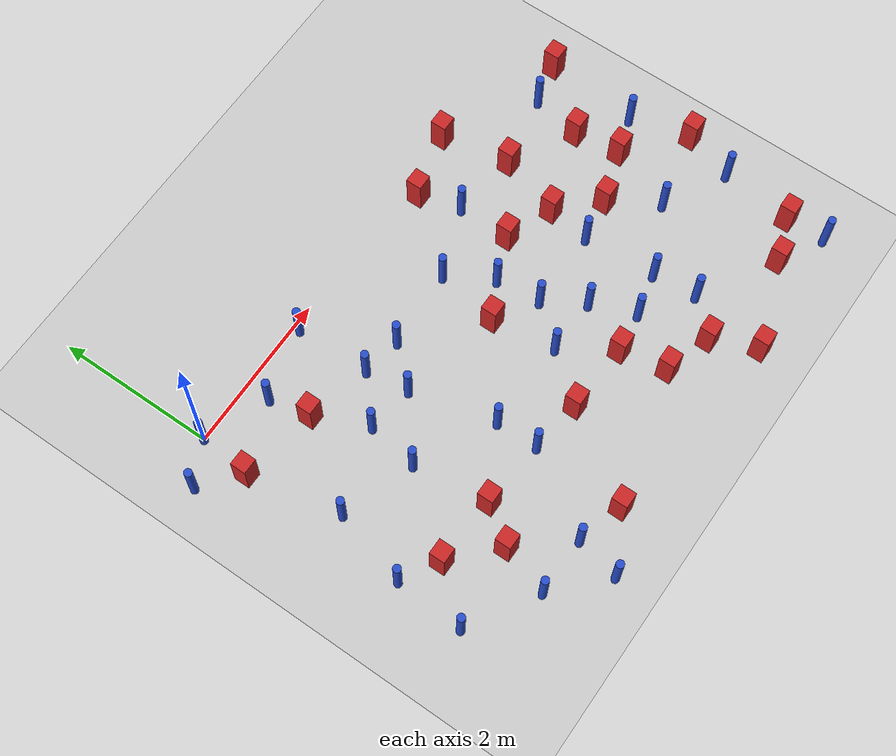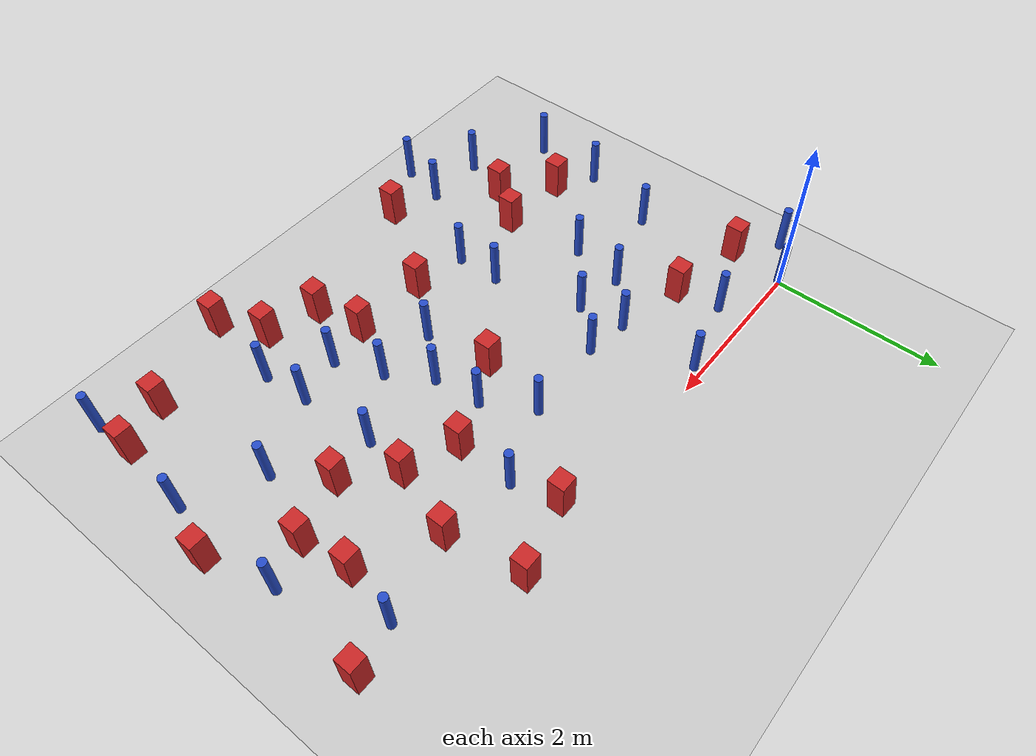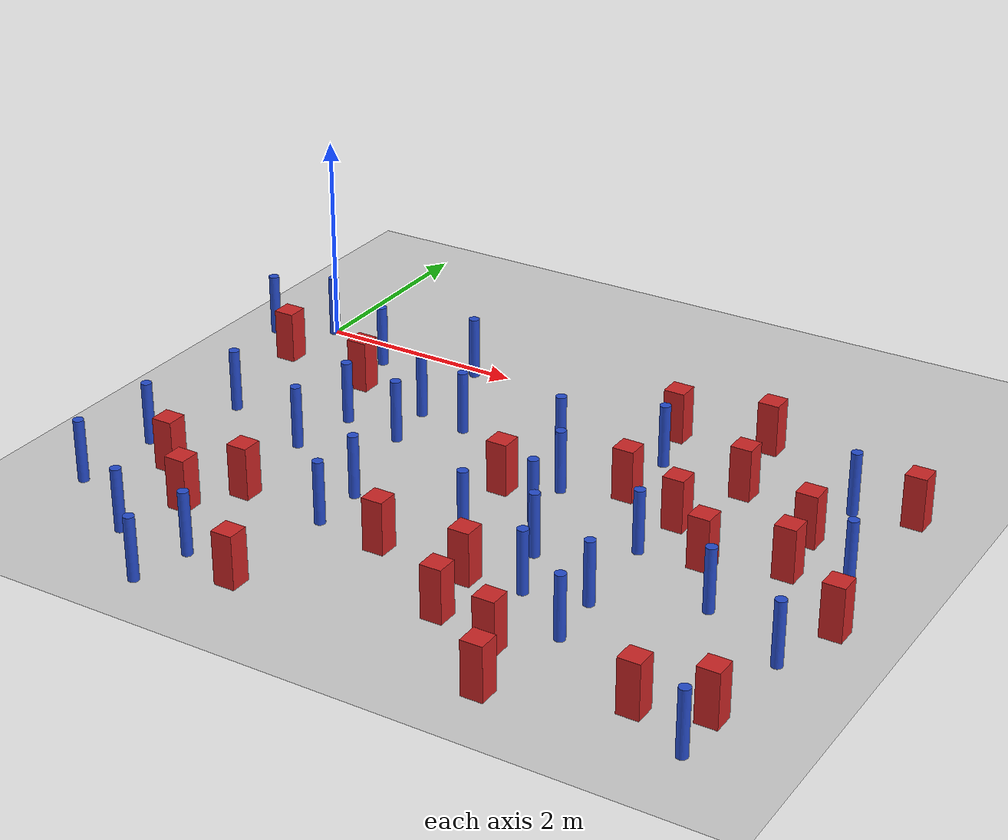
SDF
<sdf version="1.6">
 <world name="default">
  <model name="ground_plane">
   <static>1</static>
   <link name="link">
    <collision name="collision">
     <geometry><plane><normal>0 0 1</normal><size>100 100</size></plane></geometry>
     <surface><friction><ode><mu>100</mu><mu2>50</mu2></ode></friction></surface>
    </collision>
    <visual name="visual">
     <cast_shadows>0</cast_shadows>
     <geometry><plane><normal>0 0 1</normal><size>100 100</size></plane></geometry>
     <material>
      <ambient>1.0 1.0 1.0 1.0</ambient>
      <diffuse>0.8 0.8 0.8 1.0</diffuse>
      <specular>0.01 0.01 0.01 1.000000</specular>
     </material>
    </visual>
   </link>
  </model>
  <model name="NamedLocations">
   <static>true</static>
   <link name="DefaultStart"><pose>8.5 0 0 0 0 3.14</pose></link>
  </model>
  <model name="pole_obstacle3">
   <static>true</static>
   <pose>3.58272405609 -2.19162228922 -9.47619616065e-06 5.49618799737e-07 2.36310414051e-07 -1.55090534807e-07</pose>
   <link name="link">
    <pose>0 0 0.3 0 -0 0</pose>
    <inertial>
     <mass>1</mass>
     <inertia><ixx>0.145833</ixx><ixy>0</ixy><ixz>0</ixz><iyy>0.145833</iyy><iyz>0</iyz><izz>0.125</izz></inertia>
    </inertial>
    <collision name="collision">
     <geometry><cylinder><radius>0.05</radius><length>.6</length></cylinder></geometry>
    </collision>
    <visual name="visual">
     <geometry><cylinder><radius>0.05</radius><length>.6</length></cylinder></geometry>
     <material>
      <script><name>Gazebo/Blue</name><uri>file://media/materials/scripts/gazebo.material</uri></script>
     </material>
    </visual>
   </link>
  </model>
  <model name="pole_obstacle6">
   <static>true</static>
   <pose>4.59149566089 -2.1830002318 -9.47619616065e-06 5.49618799738e-07 2.36310414051e-07 -1.55090534805e-07</pose>
   <link name="link">
    <pose>0 0 0.3 0 -0 0</pose>
    <inertial>
     <mass>1</mass>
     <inertia><ixx>0.145833</ixx><ixy>0</ixy><ixz>0</ixz><iyy>0.145833</iyy><iyz>0</iyz><izz>0.125</izz></inertia>
    </inertial>
    <collision name="collision">
     <geometry><cylinder><radius>0.05</radius><length>.6</length></cylinder></geometry>
    </collision>
    <visual name="visual">
     <geometry><cylinder><radius>0.05</radius><length>.6</length></cylinder></geometry>
     <material>
      <script><name>Gazebo/Blue</name><uri>file://media/materials/scripts/gazebo.material</uri></script>
     </material>
    </visual>
   </link>
  </model>
  <model name="square_post_obstacle14">
   <static>true</static>
   <pose>6.18782036938 -4.00822140746 -6.11067671241e-07 -5.50515727128e-06 -8.79689657224e-07 2.37013304536e-05</pose>
   <link name="link">
    <pose>0 0 0.25 0 -0 0</pose>
    <inertial>
     <mass>100</mass>
     <inertia>
      <ixx>0.166667</ixx>
      <ixy>0</ixy>
      <ixz>0</ixz>
      <iyy>0.166667</iyy>
      <iyz>0</iyz>
      <izz>0.166667</izz>
     </inertia>
    </inertial>
    <collision name="collision"><geometry><box><size>.2 .2 .5</size></box></geometry></collision>
    <visual name="visual">
     <geometry><box><size>.2 .2 .5</size></box></geometry>
     <material>
      <script><name>Gazebo/Red</name><uri>file://media/materials/scripts/gazebo.material</uri></script>
     </material>
    </visual>
   </link>
  </model>
  <model name="pole_obstacle9">
   <static>true</static>
   <pose>4.07267543703 -0.739096492723 -9.47619616065e-06 5.49618799737e-07 2.36310414061e-07 -1.550905348e-07</pose>
   <link name="link">
    <pose>0 0 0.3 0 -0 0</pose>
    <inertial>
     <mass>1</mass>
     <inertia><ixx>0.145833</ixx><ixy>0</ixy><ixz>0</ixz><iyy>0.145833</iyy><iyz>0</iyz><izz>0.125</izz></inertia>
    </inertial>
    <collision name="collision">
     <geometry><cylinder><radius>0.05</radius><length>.6</length></cylinder></geometry>
    </collision>
    <visual name="visual">
     <geometry><cylinder><radius>0.05</radius><length>.6</length></cylinder></geometry>
     <material>
      <script><name>Gazebo/Blue</name><uri>file://media/materials/scripts/gazebo.material</uri></script>
     </material>
    </visual>
   </link>
  </model>
  <model name="square_post_obstacle27">
   <static>true</static>
   <pose>2.72194916645 -3.24957769912 -6.11067671241e-07 -5.50515727128e-06 -8.79689657224e-07 2.37013304536e-05</pose>
   <link name="link">
    <pose>0 0 0.25 0 -0 0</pose>
    <inertial>
     <mass>100</mass>
     <inertia>
      <ixx>0.166667</ixx>
      <ixy>0</ixy>
      <ixz>0</ixz>
      <iyy>0.166667</iyy>
      <iyz>0</iyz>
      <izz>0.166667</izz>
     </inertia>
    </inertial>
    <collision name="collision"><geometry><box><size>.2 .2 .5</size></box></geometry></collision>
    <visual name="visual">
     <geometry><box><size>.2 .2 .5</size></box></geometry>
     <material>
      <script><name>Gazebo/Red</name><uri>file://media/materials/scripts/gazebo.material</uri></script>
     </material>
    </visual>
   </link>
  </model>
  <model name="pole_obstacle21">
   <static>true</static>
   <pose>0.158909097196 -1.84218891744 -9.47619616065e-06 5.49618799738e-07 2.36310414068e-07 -1.55090534796e-07</pose>
   <link name="link">
    <pose>0 0 0.3 0 -0 0</pose>
    <inertial>
     <mass>1</mass>
     <inertia><ixx>0.145833</ixx><ixy>0</ixy><ixz>0</ixz><iyy>0.145833</iyy><iyz>0</iyz><izz>0.125</izz></inertia>
    </inertial>
    <collision name="collision">
     <geometry><cylinder><radius>0.05</radius><length>.6</length></cylinder></geometry>
    </collision>
    <visual name="visual">
     <geometry><cylinder><radius>0.05</radius><length>.6</length></cylinder></geometry>
     <material>
      <script><name>Gazebo/Blue</name><uri>file://media/materials/scripts/gazebo.material</uri></script>
     </material>
    </visual>
   </link>
  </model>
  <model name="pole_obstacle24">
   <static>true</static>
   <pose>-0.149185523467 -3.64805236145 -9.4761961606e-06 5.49618799729e-07 2.36310413997e-07 -1.55090534825e-07</pose>
   <link name="link">
    <pose>0 0 0.3 0 -0 0</pose>
    <inertial>
     <mass>1</mass>
     <inertia><ixx>0.145833</ixx><ixy>0</ixy><ixz>0</ixz><iyy>0.145833</iyy><iyz>0</iyz><izz>0.125</izz></inertia>
    </inertial>
    <collision name="collision">
     <geometry><cylinder><radius>0.05</radius><length>.6</length></cylinder></geometry>
    </collision>
    <visual name="visual">
     <geometry><cylinder><radius>0.05</radius><length>.6</length></cylinder></geometry>
     <material>
      <script><name>Gazebo/Blue</name><uri>file://media/materials/scripts/gazebo.material</uri></script>
     </material>
    </visual>
   </link>
  </model>
  <model name="square_post_obstacle34">
   <static>true</static>
   <pose>6.38540741002 -0.544285555662 -6.11067671241e-07 -5.50515727128e-06 -8.79689657224e-07 2.37013304536e-05</pose>
   <link name="link">
    <pose>0 0 0.25 0 -0 0</pose>
    <inertial>
     <mass>100</mass>
     <inertia>
      <ixx>0.166667</ixx>
      <ixy>0</ixy>
      <ixz>0</ixz>
      <iyy>0.166667</iyy>
      <iyz>0</iyz>
      <izz>0.166667</izz>
     </inertia>
    </inertial>
    <collision name="collision"><geometry><box><size>.2 .2 .5</size></box></geometry></collision>
    <visual name="visual">
     <geometry><box><size>.2 .2 .5</size></box></geometry>
     <material>
      <script><name>Gazebo/Red</name><uri>file://media/materials/scripts/gazebo.material</uri></script>
     </material>
    </visual>
   </link>
  </model>
  <model name="pole_obstacle31">
   <static>true</static>
   <pose>5.85446970726 -0.662870384667 -9.47619616065e-06 5.49618799737e-07 2.36310414061e-07 -1.550905348e-07</pose>
   <link name="link">
    <pose>0 0 0.3 0 -0 0</pose>
    <inertial>
     <mass>1</mass>
     <inertia><ixx>0.145833</ixx><ixy>0</ixy><ixz>0</ixz><iyy>0.145833</iyy><iyz>0</iyz><izz>0.125</izz></inertia>
    </inertial>
    <collision name="collision">
     <geometry><cylinder><radius>0.05</radius><length>.6</length></cylinder></geometry>
    </collision>
    <visual name="visual">
     <geometry><cylinder><radius>0.05</radius><length>.6</length></cylinder></geometry>
     <material>
      <script><name>Gazebo/Blue</name><uri>file://media/materials/scripts/gazebo.material</uri></script>
     </material>
    </visual>
   </link>
  </model>
  <model name="pole_obstacle51">
   <static>true</static>
   <pose>3.52470503607 -1.62711862913 -9.47619616065e-06 5.49618799737e-07 2.36310414072e-07 -1.55090534793e-07</pose>
   <link name="link">
    <pose>0 0 0.3 0 -0 0</pose>
    <inertial>
     <mass>1</mass>
     <inertia><ixx>0.145833</ixx><ixy>0</ixy><ixz>0</ixz><iyy>0.145833</iyy><iyz>0</iyz><izz>0.125</izz></inertia>
    </inertial>
    <collision name="collision">
     <geometry><cylinder><radius>0.05</radius><length>.6</length></cylinder></geometry>
    </collision>
    <visual name="visual">
     <geometry><cylinder><radius>0.05</radius><length>.6</length></cylinder></geometry>
     <material>
      <script><name>Gazebo/Blue</name><uri>file://media/materials/scripts/gazebo.material</uri></script>
     </material>
    </visual>
   </link>
  </model>
  <model name="square_post_obstacle57">
   <static>true</static>
   <pose>4.29934406649 -4.05373494595 -6.11067671241e-07 -5.50515727128e-06 -8.79689657224e-07 2.37013304536e-05</pose>
   <link name="link">
    <pose>0 0 0.25 0 -0 0</pose>
    <inertial>
     <mass>100</mass>
     <inertia>
      <ixx>0.166667</ixx>
      <ixy>0</ixy>
      <ixz>0</ixz>
      <iyy>0.166667</iyy>
      <iyz>0</iyz>
      <izz>0.166667</izz>
     </inertia>
    </inertial>
    <collision name="collision"><geometry><box><size>.2 .2 .5</size></box></geometry></collision>
    <visual name="visual">
     <geometry><box><size>.2 .2 .5</size></box></geometry>
     <material>
      <script><name>Gazebo/Red</name><uri>file://media/materials/scripts/gazebo.material</uri></script>
     </material>
    </visual>
   </link>
  </model>
  <model name="pole_obstacle58">
   <static>true</static>
   <pose>2.05718529817 -3.16750186175 -9.47619616065e-06 5.49618799737e-07 2.36310414051e-07 -1.55090534807e-07</pose>
   <link name="link">
    <pose>0 0 0.3 0 -0 0</pose>
    <inertial>
     <mass>1</mass>
     <inertia><ixx>0.145833</ixx><ixy>0</ixy><ixz>0</ixz><iyy>0.145833</iyy><iyz>0</iyz><izz>0.125</izz></inertia>
    </inertial>
    <collision name="collision">
     <geometry><cylinder><radius>0.05</radius><length>.6</length></cylinder></geometry>
    </collision>
    <visual name="visual">
     <geometry><cylinder><radius>0.05</radius><length>.6</length></cylinder></geometry>
     <material>
      <script><name>Gazebo/Blue</name><uri>file://media/materials/scripts/gazebo.material</uri></script>
     </material>
    </visual>
   </link>
  </model>
  <model name="square_post_obstacle63">
   <static>true</static>
   <pose>3.07526699242 -1.86525213293 -6.11067671241e-07 -5.50515727128e-06 -8.79689657224e-07 2.37013304536e-05</pose>
   <link name="link">
    <pose>0 0 0.25 0 -0 0</pose>
    <inertial>
     <mass>100</mass>
     <inertia>
      <ixx>0.166667</ixx>
      <ixy>0</ixy>
      <ixz>0</ixz>
      <iyy>0.166667</iyy>
      <iyz>0</iyz>
      <izz>0.166667</izz>
     </inertia>
    </inertial>
    <collision name="collision"><geometry><box><size>.2 .2 .5</size></box></geometry></collision>
    <visual name="visual">
     <geometry><box><size>.2 .2 .5</size></box></geometry>
     <material>
      <script><name>Gazebo/Red</name><uri>file://media/materials/scripts/gazebo.material</uri></script>
     </material>
    </visual>
   </link>
  </model>
  <model name="square_post_obstacle65">
   <static>true</static>
   <pose>4.9167820898 -0.854836416078 -6.11067671241e-07 -5.50515727128e-06 -8.79689657224e-07 2.37013304536e-05</pose>
   <link name="link">
    <pose>0 0 0.25 0 -0 0</pose>
    <inertial>
     <mass>100</mass>
     <inertia>
      <ixx>0.166667</ixx>
      <ixy>0</ixy>
      <ixz>0</ixz>
      <iyy>0.166667</iyy>
      <iyz>0</iyz>
      <izz>0.166667</izz>
     </inertia>
    </inertial>
    <collision name="collision"><geometry><box><size>.2 .2 .5</size></box></geometry></collision>
    <visual name="visual">
     <geometry><box><size>.2 .2 .5</size></box></geometry>
     <material>
      <script><name>Gazebo/Red</name><uri>file://media/materials/scripts/gazebo.material</uri></script>
     </material>
    </visual>
   </link>
  </model>
  <model name="pole_obstacle64">
   <static>true</static>
   <pose>1.41750151176 -4.16136243071 -9.47619616065e-06 5.49618799737e-07 2.36310414061e-07 -1.550905348e-07</pose>
   <link name="link">
    <pose>0 0 0.3 0 -0 0</pose>
    <inertial>
     <mass>1</mass>
     <inertia><ixx>0.145833</ixx><ixy>0</ixy><ixz>0</ixz><iyy>0.145833</iyy><iyz>0</iyz><izz>0.125</izz></inertia>
    </inertial>
    <collision name="collision">
     <geometry><cylinder><radius>0.05</radius><length>.6</length></cylinder></geometry>
    </collision>
    <visual name="visual">
     <geometry><cylinder><radius>0.05</radius><length>.6</length></cylinder></geometry>
     <material>
      <script><name>Gazebo/Blue</name><uri>file://media/materials/scripts/gazebo.material</uri></script>
     </material>
    </visual>
   </link>
  </model>
  <model name="pole_obstacle73">
   <static>true</static>
   <pose>0.693529149861 -4.15136273481 -9.47619616065e-06 5.49618799737e-07 2.36310414065e-07 -1.55090534796e-07</pose>
   <link name="link">
    <pose>0 0 0.3 0 -0 0</pose>
    <inertial>
     <mass>1</mass>
     <inertia><ixx>0.145833</ixx><ixy>0</ixy><ixz>0</ixz><iyy>0.145833</iyy><iyz>0</iyz><izz>0.125</izz></inertia>
    </inertial>
    <collision name="collision">
     <geometry><cylinder><radius>0.05</radius><length>.6</length></cylinder></geometry>
    </collision>
    <visual name="visual">
     <geometry><cylinder><radius>0.05</radius><length>.6</length></cylinder></geometry>
     <material>
      <script><name>Gazebo/Blue</name><uri>file://media/materials/scripts/gazebo.material</uri></script>
     </material>
    </visual>
   </link>
  </model>
  <model name="pole_obstacle75">
   <static>true</static>
   <pose>1.68649189521 -0.0990275698938 -9.47619616065e-06 5.49618799737e-07 2.36310414064e-07 -1.55090534798e-07</pose>
   <link name="link">
    <pose>0 0 0.3 0 -0 0</pose>
    <inertial>
     <mass>1</mass>
     <inertia><ixx>0.145833</ixx><ixy>0</ixy><ixz>0</ixz><iyy>0.145833</iyy><iyz>0</iyz><izz>0.125</izz></inertia>
    </inertial>
    <collision name="collision">
     <geometry><cylinder><radius>0.05</radius><length>.6</length></cylinder></geometry>
    </collision>
    <visual name="visual">
     <geometry><cylinder><radius>0.05</radius><length>.6</length></cylinder></geometry>
     <material>
      <script><name>Gazebo/Blue</name><uri>file://media/materials/scripts/gazebo.material</uri></script>
     </material>
    </visual>
   </link>
  </model>
  <model name="pole_obstacle85">
   <static>true</static>
   <pose>2.20527275366 -1.12541294421 -9.47619616065e-06 5.49618799737e-07 2.36310414072e-07 -1.55090534793e-07</pose>
   <link name="link">
    <pose>0 0 0.3 0 -0 0</pose>
    <inertial>
     <mass>1</mass>
     <inertia><ixx>0.145833</ixx><ixy>0</ixy><ixz>0</ixz><iyy>0.145833</iyy><iyz>0</iyz><izz>0.125</izz></inertia>
    </inertial>
    <collision name="collision">
     <geometry><cylinder><radius>0.05</radius><length>.6</length></cylinder></geometry>
    </collision>
    <visual name="visual">
     <geometry><cylinder><radius>0.05</radius><length>.6</length></cylinder></geometry>
     <material>
      <script><name>Gazebo/Blue</name><uri>file://media/materials/scripts/gazebo.material</uri></script>
     </material>
    </visual>
   </link>
  </model>
  <model name="pole_obstacle88">
   <static>true</static>
   <pose>3.20381782987 -1.06922926228 -9.47619616065e-06 5.49618799737e-07 2.36310414072e-07 -1.55090534793e-07</pose>
   <link name="link">
    <pose>0 0 0.3 0 -0 0</pose>
    <inertial>
     <mass>1</mass>
     <inertia><ixx>0.145833</ixx><ixy>0</ixy><ixz>0</ixz><iyy>0.145833</iyy><iyz>0</iyz><izz>0.125</izz></inertia>
    </inertial>
    <collision name="collision">
     <geometry><cylinder><radius>0.05</radius><length>.6</length></cylinder></geometry>
    </collision>
    <visual name="visual">
     <geometry><cylinder><radius>0.05</radius><length>.6</length></cylinder></geometry>
     <material>
      <script><name>Gazebo/Blue</name><uri>file://media/materials/scripts/gazebo.material</uri></script>
     </material>
    </visual>
   </link>
  </model>
  <model name="pole_obstacle98">
   <static>true</static>
   <pose>2.04653486869 -2.63713153117 -9.47619616065e-06 5.49618799738e-07 2.36310414047e-07 -1.55090534808e-07</pose>
   <link name="link">
    <pose>0 0 0.3 0 -0 0</pose>
    <inertial>
     <mass>1</mass>
     <inertia><ixx>0.145833</ixx><ixy>0</ixy><ixz>0</ixz><iyy>0.145833</iyy><iyz>0</iyz><izz>0.125</izz></inertia>
    </inertial>
    <collision name="collision">
     <geometry><cylinder><radius>0.05</radius><length>.6</length></cylinder></geometry>
    </collision>
    <visual name="visual">
     <geometry><cylinder><radius>0.05</radius><length>.6</length></cylinder></geometry>
     <material>
      <script><name>Gazebo/Blue</name><uri>file://media/materials/scripts/gazebo.material</uri></script>
     </material>
    </visual>
   </link>
  </model>
  <model name="pole_obstacle101">
   <static>true</static>
   <pose>5.50163234213 -2.69299753524 -9.47619616065e-06 5.49618799738e-07 2.36310414051e-07 -1.55090534805e-07</pose>
   <link name="link">
    <pose>0 0 0.3 0 -0 0</pose>
    <inertial>
     <mass>1</mass>
     <inertia><ixx>0.145833</ixx><ixy>0</ixy><ixz>0</ixz><iyy>0.145833</iyy><iyz>0</iyz><izz>0.125</izz></inertia>
    </inertial>
    <collision name="collision">
     <geometry><cylinder><radius>0.05</radius><length>.6</length></cylinder></geometry>
    </collision>
    <visual name="visual">
     <geometry><cylinder><radius>0.05</radius><length>.6</length></cylinder></geometry>
     <material>
      <script><name>Gazebo/Blue</name><uri>file://media/materials/scripts/gazebo.material</uri></script>
     </material>
    </visual>
   </link>
  </model>
  <model name="pole_obstacle106">
   <static>true</static>
   <pose>-0.534209004417 -0.292026559808 -9.47619616065e-06 5.49618799737e-07 2.36310414063e-07 -1.55090534797e-07</pose>
   <link name="link">
    <pose>0 0 0.3 0 -0 0</pose>
    <inertial>
     <mass>1</mass>
     <inertia><ixx>0.145833</ixx><ixy>0</ixy><ixz>0</ixz><iyy>0.145833</iyy><iyz>0</iyz><izz>0.125</izz></inertia>
    </inertial>
    <collision name="collision">
     <geometry><cylinder><radius>0.05</radius><length>.6</length></cylinder></geometry>
    </collision>
    <visual name="visual">
     <geometry><cylinder><radius>0.05</radius><length>.6</length></cylinder></geometry>
     <material>
      <script><name>Gazebo/Blue</name><uri>file://media/materials/scripts/gazebo.material</uri></script>
     </material>
    </visual>
   </link>
  </model>
  <model name="square_post_obstacle99">
   <static>true</static>
   <pose>-0.0680560673629 -0.675656505767 -6.11067671241e-07 -5.50515727128e-06 -8.79689657224e-07 2.37013304536e-05</pose>
   <link name="link">
    <pose>0 0 0.25 0 -0 0</pose>
    <inertial>
     <mass>100</mass>
     <inertia>
      <ixx>0.166667</ixx>
      <ixy>0</ixy>
      <ixz>0</ixz>
      <iyy>0.166667</iyy>
      <iyz>0</iyz>
      <izz>0.166667</izz>
     </inertia>
    </inertial>
    <collision name="collision"><geometry><box><size>.2 .2 .5</size></box></geometry></collision>
    <visual name="visual">
     <geometry><box><size>.2 .2 .5</size></box></geometry>
     <material>
      <script><name>Gazebo/Red</name><uri>file://media/materials/scripts/gazebo.material</uri></script>
     </material>
    </visual>
   </link>
  </model>
  <model name="pole_obstacle114">
   <static>true</static>
   <pose>1.08102372746 -2.14476364799 -9.47619616065e-06 5.49618799737e-07 2.36310414062e-07 -1.55090534798e-07</pose>
   <link name="link">
    <pose>0 0 0.3 0 -0 0</pose>
    <inertial>
     <mass>1</mass>
     <inertia><ixx>0.145833</ixx><ixy>0</ixy><ixz>0</ixz><iyy>0.145833</iyy><iyz>0</iyz><izz>0.125</izz></inertia>
    </inertial>
    <collision name="collision">
     <geometry><cylinder><radius>0.05</radius><length>.6</length></cylinder></geometry>
    </collision>
    <visual name="visual">
     <geometry><cylinder><radius>0.05</radius><length>.6</length></cylinder></geometry>
     <material>
      <script><name>Gazebo/Blue</name><uri>file://media/materials/scripts/gazebo.material</uri></script>
     </material>
    </visual>
   </link>
  </model>
  <model name="pole_obstacle117">
   <static>true</static>
   <pose>4.09958841676 -3.2265884422 -9.47619616065e-06 5.49618799738e-07 2.36310414051e-07 -1.55090534805e-07</pose>
   <link name="link">
    <pose>0 0 0.3 0 -0 0</pose>
    <inertial>
     <mass>1</mass>
     <inertia><ixx>0.145833</ixx><ixy>0</ixy><ixz>0</ixz><iyy>0.145833</iyy><iyz>0</iyz><izz>0.125</izz></inertia>
    </inertial>
    <collision name="collision">
     <geometry><cylinder><radius>0.05</radius><length>.6</length></cylinder></geometry>
    </collision>
    <visual name="visual">
     <geometry><cylinder><radius>0.05</radius><length>.6</length></cylinder></geometry>
     <material>
      <script><name>Gazebo/Blue</name><uri>file://media/materials/scripts/gazebo.material</uri></script>
     </material>
    </visual>
   </link>
  </model>
  <model name="square_post_obstacle104">
   <static>true</static>
   <pose>5.64328791103 -4.20735274633 -6.11067671241e-07 -5.50515727128e-06 -8.79689657224e-07 2.37013304536e-05</pose>
   <link name="link">
    <pose>0 0 0.25 0 -0 0</pose>
    <inertial>
     <mass>100</mass>
     <inertia>
      <ixx>0.166667</ixx>
      <ixy>0</ixy>
      <ixz>0</ixz>
      <iyy>0.166667</iyy>
      <iyz>0</iyz>
      <izz>0.166667</izz>
     </inertia>
    </inertial>
    <collision name="collision"><geometry><box><size>.2 .2 .5</size></box></geometry></collision>
    <visual name="visual">
     <geometry><box><size>.2 .2 .5</size></box></geometry>
     <material>
      <script><name>Gazebo/Red</name><uri>file://media/materials/scripts/gazebo.material</uri></script>
     </material>
    </visual>
   </link>
  </model>
  <model name="pole_obstacle120">
   <static>true</static>
   <pose>6.28288578558 -1.72526329659 -9.47619616065e-06 5.49618799738e-07 2.36310414071e-07 -1.55090534796e-07</pose>
   <link name="link">
    <pose>0 0 0.3 0 -0 0</pose>
    <inertial>
     <mass>1</mass>
     <inertia><ixx>0.145833</ixx><ixy>0</ixy><ixz>0</ixz><iyy>0.145833</iyy><iyz>0</iyz><izz>0.125</izz></inertia>
    </inertial>
    <collision name="collision">
     <geometry><cylinder><radius>0.05</radius><length>.6</length></cylinder></geometry>
    </collision>
    <visual name="visual">
     <geometry><cylinder><radius>0.05</radius><length>.6</length></cylinder></geometry>
     <material>
      <script><name>Gazebo/Blue</name><uri>file://media/materials/scripts/gazebo.material</uri></script>
     </material>
    </visual>
   </link>
  </model>
  <model name="pole_obstacle124">
   <static>true</static>
   <pose>1.78167763211 -1.58451871084 -9.47619616065e-06 5.49618799737e-07 2.36310414065e-07 -1.55090534798e-07</pose>
   <link name="link">
    <pose>0 0 0.3 0 -0 0</pose>
    <inertial>
     <mass>1</mass>
     <inertia><ixx>0.145833</ixx><ixy>0</ixy><ixz>0</ixz><iyy>0.145833</iyy><iyz>0</iyz><izz>0.125</izz></inertia>
    </inertial>
    <collision name="collision">
     <geometry><cylinder><radius>0.05</radius><length>.6</length></cylinder></geometry>
    </collision>
    <visual name="visual">
     <geometry><cylinder><radius>0.05</radius><length>.6</length></cylinder></geometry>
     <material>
      <script><name>Gazebo/Blue</name><uri>file://media/materials/scripts/gazebo.material</uri></script>
     </material>
    </visual>
   </link>
  </model>
  <model name="square_post_obstacle114">
   <static>true</static>
   <pose>4.0657313727 -1.40791695577 -6.11067671241e-07 -5.50515727128e-06 -8.79689657224e-07 2.37013304536e-05</pose>
   <link name="link">
    <pose>0 0 0.25 0 -0 0</pose>
    <inertial>
     <mass>100</mass>
     <inertia>
      <ixx>0.166667</ixx>
      <ixy>0</ixy>
      <ixz>0</ixz>
      <iyy>0.166667</iyy>
      <iyz>0</iyz>
      <izz>0.166667</izz>
     </inertia>
    </inertial>
    <collision name="collision"><geometry><box><size>.2 .2 .5</size></box></geometry></collision>
    <visual name="visual">
     <geometry><box><size>.2 .2 .5</size></box></geometry>
     <material>
      <script><name>Gazebo/Red</name><uri>file://media/materials/scripts/gazebo.material</uri></script>
     </material>
    </visual>
   </link>
  </model>
  <model name="pole_obstacle132">
   <static>true</static>
   <pose>6.20424943716 -4.51496457561 -9.47619616065e-06 5.49618799737e-07 2.36310414037e-07 -1.55090534814e-07</pose>
   <link name="link">
    <pose>0 0 0.3 0 -0 0</pose>
    <inertial>
     <mass>1</mass>
     <inertia><ixx>0.145833</ixx><ixy>0</ixy><ixz>0</ixz><iyy>0.145833</iyy><iyz>0</iyz><izz>0.125</izz></inertia>
    </inertial>
    <collision name="collision">
     <geometry><cylinder><radius>0.05</radius><length>.6</length></cylinder></geometry>
    </collision>
    <visual name="visual">
     <geometry><cylinder><radius>0.05</radius><length>.6</length></cylinder></geometry>
     <material>
      <script><name>Gazebo/Blue</name><uri>file://media/materials/scripts/gazebo.material</uri></script>
     </material>
    </visual>
   </link>
  </model>
  <model name="square_post_obstacle116">
   <static>true</static>
   <pose>4.76154115717 0.0185535178162 -6.11067671241e-07 -5.50515727128e-06 -8.79689657224e-07 2.37013304536e-05</pose>
   <link name="link">
    <pose>0 0 0.25 0 -0 0</pose>
    <inertial>
     <mass>100</mass>
     <inertia>
      <ixx>0.166667</ixx>
      <ixy>0</ixy>
      <ixz>0</ixz>
      <iyy>0.166667</iyy>
      <iyz>0</iyz>
      <izz>0.166667</izz>
     </inertia>
    </inertial>
    <collision name="collision"><geometry><box><size>.2 .2 .5</size></box></geometry></collision>
    <visual name="visual">
     <geometry><box><size>.2 .2 .5</size></box></geometry>
     <material>
      <script><name>Gazebo/Red</name><uri>file://media/materials/scripts/gazebo.material</uri></script>
     </material>
    </visual>
   </link>
  </model>
  <model name="pole_obstacle138">
   <static>true</static>
   <pose>0.788633457509 -0.339825982032 -9.47619616065e-06 5.49618799737e-07 2.36310414068e-07 -1.55090534796e-07</pose>
   <link name="link">
    <pose>0 0 0.3 0 -0 0</pose>
    <inertial>
     <mass>1</mass>
     <inertia><ixx>0.145833</ixx><ixy>0</ixy><ixz>0</ixz><iyy>0.145833</iyy><iyz>0</iyz><izz>0.125</izz></inertia>
    </inertial>
    <collision name="collision">
     <geometry><cylinder><radius>0.05</radius><length>.6</length></cylinder></geometry>
    </collision>
    <visual name="visual">
     <geometry><cylinder><radius>0.05</radius><length>.6</length></cylinder></geometry>
     <material>
      <script><name>Gazebo/Blue</name><uri>file://media/materials/scripts/gazebo.material</uri></script>
     </material>
    </visual>
   </link>
  </model>
  <model name="pole_obstacle141">
   <static>true</static>
   <pose>1.70586682721 -1.044550323 -9.47619616065e-06 5.49618799738e-07 2.36310414064e-07 -1.55090534797e-07</pose>
   <link name="link">
    <pose>0 0 0.3 0 -0 0</pose>
    <inertial>
     <mass>1</mass>
     <inertia><ixx>0.145833</ixx><ixy>0</ixy><ixz>0</ixz><iyy>0.145833</iyy><iyz>0</iyz><izz>0.125</izz></inertia>
    </inertial>
    <collision name="collision">
     <geometry><cylinder><radius>0.05</radius><length>.6</length></cylinder></geometry>
    </collision>
    <visual name="visual">
     <geometry><cylinder><radius>0.05</radius><length>.6</length></cylinder></geometry>
     <material>
      <script><name>Gazebo/Blue</name><uri>file://media/materials/scripts/gazebo.material</uri></script>
     </material>
    </visual>
   </link>
  </model>
  <model name="square_post_obstacle130">
   <static>true</static>
   <pose>0.901561028918 -0.845094496153 -6.11067671241e-07 -5.50515727128e-06 -8.79689657224e-07 2.37013304536e-05</pose>
   <link name="link">
    <pose>0 0 0.25 0 -0 0</pose>
    <inertial>
     <mass>100</mass>
     <inertia>
      <ixx>0.166667</ixx>
      <ixy>0</ixy>
      <ixz>0</ixz>
      <iyy>0.166667</iyy>
      <iyz>0</iyz>
      <izz>0.166667</izz>
     </inertia>
    </inertial>
    <collision name="collision"><geometry><box><size>.2 .2 .5</size></box></geometry></collision>
    <visual name="visual">
     <geometry><box><size>.2 .2 .5</size></box></geometry>
     <material>
      <script><name>Gazebo/Red</name><uri>file://media/materials/scripts/gazebo.material</uri></script>
     </material>
    </visual>
   </link>
  </model>
  <model name="square_post_obstacle138">
   <static>true</static>
   <pose>5.72905600163 -1.29240824363 -6.11067671241e-07 -5.50515727128e-06 -8.79689657224e-07 2.37013304536e-05</pose>
   <link name="link">
    <pose>0 0 0.25 0 -0 0</pose>
    <inertial>
     <mass>100</mass>
     <inertia>
      <ixx>0.166667</ixx>
      <ixy>0</ixy>
      <ixz>0</ixz>
      <iyy>0.166667</iyy>
      <iyz>0</iyz>
      <izz>0.166667</izz>
     </inertia>
    </inertial>
    <collision name="collision"><geometry><box><size>.2 .2 .5</size></box></geometry></collision>
    <visual name="visual">
     <geometry><box><size>.2 .2 .5</size></box></geometry>
     <material>
      <script><name>Gazebo/Red</name><uri>file://media/materials/scripts/gazebo.material</uri></script>
     </material>
    </visual>
   </link>
  </model>
  <model name="square_post_obstacle139">
   <static>true</static>
   <pose>3.70357494387 -3.87584671003 -6.11067671241e-07 -5.50515727128e-06 -8.79689657224e-07 2.37013304536e-05</pose>
   <link name="link">
    <pose>0 0 0.25 0 -0 0</pose>
    <inertial>
     <mass>100</mass>
     <inertia>
      <ixx>0.166667</ixx>
      <ixy>0</ixy>
      <ixz>0</ixz>
      <iyy>0.166667</iyy>
      <iyz>0</iyz>
      <izz>0.166667</izz>
     </inertia>
    </inertial>
    <collision name="collision"><geometry><box><size>.2 .2 .5</size></box></geometry></collision>
    <visual name="visual">
     <geometry><box><size>.2 .2 .5</size></box></geometry>
     <material>
      <script><name>Gazebo/Red</name><uri>file://media/materials/scripts/gazebo.material</uri></script>
     </material>
    </visual>
   </link>
  </model>
  <model name="square_post_obstacle141">
   <static>true</static>
   <pose>2.00098323428 -4.3235793 -6.11067671241e-07 -5.50515727128e-06 -8.79689657224e-07 2.37013304536e-05</pose>
   <link name="link">
    <pose>0 0 0.25 0 -0 0</pose>
    <inertial>
     <mass>100</mass>
     <inertia>
      <ixx>0.166667</ixx>
      <ixy>0</ixy>
      <ixz>0</ixz>
      <iyy>0.166667</iyy>
      <iyz>0</iyz>
      <izz>0.166667</izz>
     </inertia>
    </inertial>
    <collision name="collision"><geometry><box><size>.2 .2 .5</size></box></geometry></collision>
    <visual name="visual">
     <geometry><box><size>.2 .2 .5</size></box></geometry>
     <material>
      <script><name>Gazebo/Red</name><uri>file://media/materials/scripts/gazebo.material</uri></script>
     </material>
    </visual>
   </link>
  </model>
  <model name="square_post_obstacle148">
   <static>true</static>
   <pose>0.354657966729 -3.04980292012 -6.11067671241e-07 -5.50515727128e-06 -8.79689657224e-07 2.37013304536e-05</pose>
   <link name="link">
    <pose>0 0 0.25 0 -0 0</pose>
    <inertial>
     <mass>100</mass>
     <inertia>
      <ixx>0.166667</ixx>
      <ixy>0</ixy>
      <ixz>0</ixz>
      <iyy>0.166667</iyy>
      <iyz>0</iyz>
      <izz>0.166667</izz>
     </inertia>
    </inertial>
    <collision name="collision"><geometry><box><size>.2 .2 .5</size></box></geometry></collision>
    <visual name="visual">
     <geometry><box><size>.2 .2 .5</size></box></geometry>
     <material>
      <script><name>Gazebo/Red</name><uri>file://media/materials/scripts/gazebo.material</uri></script>
     </material>
    </visual>
   </link>
  </model>
  <model name="square_post_obstacle153">
   <static>true</static>
   <pose>1.20882534248 -3.09249684506 -6.11067671241e-07 -5.50515727128e-06 -8.79689657224e-07 2.37013304536e-05</pose>
   <link name="link">
    <pose>0 0 0.25 0 -0 0</pose>
    <inertial>
     <mass>100</mass>
     <inertia>
      <ixx>0.166667</ixx>
      <ixy>0</ixy>
      <ixz>0</ixz>
      <iyy>0.166667</iyy>
      <iyz>0</iyz>
      <izz>0.166667</izz>
     </inertia>
    </inertial>
    <collision name="collision"><geometry><box><size>.2 .2 .5</size></box></geometry></collision>
    <visual name="visual">
     <geometry><box><size>.2 .2 .5</size></box></geometry>
     <material>
      <script><name>Gazebo/Red</name><uri>file://media/materials/scripts/gazebo.material</uri></script>
     </material>
    </visual>
   </link>
  </model>
  <model name="pole_obstacle161">
   <static>true</static>
   <pose>-0.0113385901616 -0.014522897388 -9.47619616065e-06 5.49618799737e-07 2.36310414053e-07 -1.55090534803e-07</pose>
   <link name="link">
    <pose>0 0 0.3 0 -0 0</pose>
    <inertial>
     <mass>1</mass>
     <inertia><ixx>0.145833</ixx><ixy>0</ixy><ixz>0</ixz><iyy>0.145833</iyy><iyz>0</iyz><izz>0.125</izz></inertia>
    </inertial>
    <collision name="collision">
     <geometry><cylinder><radius>0.05</radius><length>.6</length></cylinder></geometry>
    </collision>
    <visual name="visual">
     <geometry><cylinder><radius>0.05</radius><length>.6</length></cylinder></geometry>
     <material>
      <script><name>Gazebo/Blue</name><uri>file://media/materials/scripts/gazebo.material</uri></script>
     </material>
    </visual>
   </link>
  </model>
  <model name="square_post_obstacle154">
   <static>true</static>
   <pose>5.80535259875 -1.87418502449 -6.11067671241e-07 -5.50515727128e-06 -8.79689657224e-07 2.37013304536e-05</pose>
   <link name="link">
    <pose>0 0 0.25 0 -0 0</pose>
    <inertial>
     <mass>100</mass>
     <inertia>
      <ixx>0.166667</ixx>
      <ixy>0</ixy>
      <ixz>0</ixz>
      <iyy>0.166667</iyy>
      <iyz>0</iyz>
      <izz>0.166667</izz>
     </inertia>
    </inertial>
    <collision name="collision"><geometry><box><size>.2 .2 .5</size></box></geometry></collision>
    <visual name="visual">
     <geometry><box><size>.2 .2 .5</size></box></geometry>
     <material>
      <script><name>Gazebo/Red</name><uri>file://media/materials/scripts/gazebo.material</uri></script>
     </material>
    </visual>
   </link>
  </model>
  <model name="square_post_obstacle160">
   <static>true</static>
   <pose>3.93543750469 -0.20660637545 -6.11067671241e-07 -5.50515727128e-06 -8.79689657224e-07 2.37013304536e-05</pose>
   <link name="link">
    <pose>0 0 0.25 0 -0 0</pose>
    <inertial>
     <mass>100</mass>
     <inertia>
      <ixx>0.166667</ixx>
      <ixy>0</ixy>
      <ixz>0</ixz>
      <iyy>0.166667</iyy>
      <iyz>0</iyz>
      <izz>0.166667</izz>
     </inertia>
    </inertial>
    <collision name="collision"><geometry><box><size>.2 .2 .5</size></box></geometry></collision>
    <visual name="visual">
     <geometry><box><size>.2 .2 .5</size></box></geometry>
     <material>
      <script><name>Gazebo/Red</name><uri>file://media/materials/scripts/gazebo.material</uri></script>
     </material>
    </visual>
   </link>
  </model>
  <model name="square_post_obstacle161">
   <static>true</static>
   <pose>4.54282759065 -4.61206882609 -6.11067671241e-07 -5.50515727128e-06 -8.79689657224e-07 2.37013304536e-05</pose>
   <link name="link">
    <pose>0 0 0.25 0 -0 0</pose>
    <inertial>
     <mass>100</mass>
     <inertia>
      <ixx>0.166667</ixx>
      <ixy>0</ixy>
      <ixz>0</ixz>
      <iyy>0.166667</iyy>
      <iyz>0</iyz>
      <izz>0.166667</izz>
     </inertia>
    </inertial>
    <collision name="collision"><geometry><box><size>.2 .2 .5</size></box></geometry></collision>
    <visual name="visual">
     <geometry><box><size>.2 .2 .5</size></box></geometry>
     <material>
      <script><name>Gazebo/Red</name><uri>file://media/materials/scripts/gazebo.material</uri></script>
     </material>
    </visual>
   </link>
  </model>
  <model name="pole_obstacle172">
   <static>true</static>
   <pose>3.18285070716 -2.6701093381 -9.47619616065e-06 5.49618799737e-07 2.36310414051e-07 -1.55090534807e-07</pose>
   <link name="link">
    <pose>0 0 0.3 0 -0 0</pose>
    <inertial>
     <mass>1</mass>
     <inertia><ixx>0.145833</ixx><ixy>0</ixy><ixz>0</ixz><iyy>0.145833</iyy><iyz>0</iyz><izz>0.125</izz></inertia>
    </inertial>
    <collision name="collision">
     <geometry><cylinder><radius>0.05</radius><length>.6</length></cylinder></geometry>
    </collision>
    <visual name="visual">
     <geometry><cylinder><radius>0.05</radius><length>.6</length></cylinder></geometry>
     <material>
      <script><name>Gazebo/Blue</name><uri>file://media/materials/scripts/gazebo.material</uri></script>
     </material>
    </visual>
   </link>
  </model>
  <model name="square_post_obstacle163">
   <static>true</static>
   <pose>6.49382219525 -2.47727440789 -6.11067671241e-07 -5.50515727128e-06 -8.79689657224e-07 2.37013304536e-05</pose>
   <link name="link">
    <pose>0 0 0.25 0 -0 0</pose>
    <inertial>
     <mass>100</mass>
     <inertia>
      <ixx>0.166667</ixx>
      <ixy>0</ixy>
      <ixz>0</ixz>
      <iyy>0.166667</iyy>
      <iyz>0</iyz>
      <izz>0.166667</izz>
     </inertia>
    </inertial>
    <collision name="collision"><geometry><box><size>.2 .2 .5</size></box></geometry></collision>
    <visual name="visual">
     <geometry><box><size>.2 .2 .5</size></box></geometry>
     <material>
      <script><name>Gazebo/Red</name><uri>file://media/materials/scripts/gazebo.material</uri></script>
     </material>
    </visual>
   </link>
  </model>
  <model name="square_post_obstacle184">
   <static>true</static>
   <pose>4.66701121285 -1.63503214388 -6.11067671241e-07 -5.50515727128e-06 -8.79689657224e-07 2.37013304536e-05</pose>
   <link name="link">
    <pose>0 0 0.25 0 -0 0</pose>
    <inertial>
     <mass>100</mass>
     <inertia>
      <ixx>0.166667</ixx>
      <ixy>0</ixy>
      <ixz>0</ixz>
      <iyy>0.166667</iyy>
      <iyz>0</iyz>
      <izz>0.166667</izz>
     </inertia>
    </inertial>
    <collision name="collision"><geometry><box><size>.2 .2 .5</size></box></geometry></collision>
    <visual name="visual">
     <geometry><box><size>.2 .2 .5</size></box></geometry>
     <material>
      <script><name>Gazebo/Red</name><uri>file://media/materials/scripts/gazebo.material</uri></script>
     </material>
    </visual>
   </link>
  </model>
  <model name="square_post_obstacle190">
   <static>true</static>
   <pose>3.59291325419 -3.29294668392 -6.11067671241e-07 -5.50515727128e-06 -8.79689657224e-07 2.37013304536e-05</pose>
   <link name="link">
    <pose>0 0 0.25 0 -0 0</pose>
    <inertial>
     <mass>100</mass>
     <inertia>
      <ixx>0.166667</ixx>
      <ixy>0</ixy>
      <ixz>0</ixz>
      <iyy>0.166667</iyy>
      <iyz>0</iyz>
      <izz>0.166667</izz>
     </inertia>
    </inertial>
    <collision name="collision"><geometry><box><size>.2 .2 .5</size></box></geometry></collision>
    <visual name="visual">
     <geometry><box><size>.2 .2 .5</size></box></geometry>
     <material>
      <script><name>Gazebo/Red</name><uri>file://media/materials/scripts/gazebo.material</uri></script>
     </material>
    </visual>
   </link>
  </model>
  <model name="pole_obstacle203">
   <static>true</static>
   <pose>4.64050275264 -3.0987594407 -9.47619616065e-06 5.49618799738e-07 2.36310414051e-07 -1.55090534805e-07</pose>
   <link name="link">
    <pose>0 0 0.3 0 -0 0</pose>
    <inertial>
     <mass>1</mass>
     <inertia><ixx>0.145833</ixx><ixy>0</ixy><ixz>0</ixz><iyy>0.145833</iyy><iyz>0</iyz><izz>0.125</izz></inertia>
    </inertial>
    <collision name="collision">
     <geometry><cylinder><radius>0.05</radius><length>.6</length></cylinder></geometry>
    </collision>
    <visual name="visual">
     <geometry><cylinder><radius>0.05</radius><length>.6</length></cylinder></geometry>
     <material>
      <script><name>Gazebo/Blue</name><uri>file://media/materials/scripts/gazebo.material</uri></script>
     </material>
    </visual>
   </link>
  </model>
  <model name="pole_obstacle204">
   <static>true</static>
   <pose>4.69210620999 -3.6546581655 -9.47619616065e-06 5.49618799738e-07 2.36310414051e-07 -1.55090534805e-07</pose>
   <link name="link">
    <pose>0 0 0.3 0 -0 0</pose>
    <inertial>
     <mass>1</mass>
     <inertia><ixx>0.145833</ixx><ixy>0</ixy><ixz>0</ixz><iyy>0.145833</iyy><iyz>0</iyz><izz>0.125</izz></inertia>
    </inertial>
    <collision name="collision">
     <geometry><cylinder><radius>0.05</radius><length>.6</length></cylinder></geometry>
    </collision>
    <visual name="visual">
     <geometry><cylinder><radius>0.05</radius><length>.6</length></cylinder></geometry>
     <material>
      <script><name>Gazebo/Blue</name><uri>file://media/materials/scripts/gazebo.material</uri></script>
     </material>
    </visual>
   </link>
  </model>
  <model name="pole_obstacle207">
   <static>true</static>
   <pose>6.29246427862 -3.10953027115 -9.47619616065e-06 5.49618799738e-07 2.36310414051e-07 -1.55090534805e-07</pose>
   <link name="link">
    <pose>0 0 0.3 0 -0 0</pose>
    <inertial>
     <mass>1</mass>
     <inertia><ixx>0.145833</ixx><ixy>0</ixy><ixz>0</ixz><iyy>0.145833</iyy><iyz>0</iyz><izz>0.125</izz></inertia>
    </inertial>
    <collision name="collision">
     <geometry><cylinder><radius>0.05</radius><length>.6</length></cylinder></geometry>
    </collision>
    <visual name="visual">
     <geometry><cylinder><radius>0.05</radius><length>.6</length></cylinder></geometry>
     <material>
      <script><name>Gazebo/Blue</name><uri>file://media/materials/scripts/gazebo.material</uri></script>
     </material>
    </visual>
   </link>
  </model>
  <model name="pole_obstacle208">
   <static>true</static>
   <pose>1.29890612007 -4.70762872177 -9.47619616065e-06 5.49618799737e-07 2.36310414061e-07 -1.550905348e-07</pose>
   <link name="link">
    <pose>0 0 0.3 0 -0 0</pose>
    <inertial>
     <mass>1</mass>
     <inertia><ixx>0.145833</ixx><ixy>0</ixy><ixz>0</ixz><iyy>0.145833</iyy><iyz>0</iyz><izz>0.125</izz></inertia>
    </inertial>
    <collision name="collision">
     <geometry><cylinder><radius>0.05</radius><length>.6</length></cylinder></geometry>
    </collision>
    <visual name="visual">
     <geometry><cylinder><radius>0.05</radius><length>.6</length></cylinder></geometry>
     <material>
      <script><name>Gazebo/Blue</name><uri>file://media/materials/scripts/gazebo.material</uri></script>
     </material>
    </visual>
   </link>
  </model>
  <model name="pole_obstacle215">
   <static>true</static>
   <pose>1.18915169786 -1.50392620709 -9.47619616065e-06 5.49618799737e-07 2.36310414065e-07 -1.55090534798e-07</pose>
   <link name="link">
    <pose>0 0 0.3 0 -0 0</pose>
    <inertial>
     <mass>1</mass>
     <inertia><ixx>0.145833</ixx><ixy>0</ixy><ixz>0</ixz><iyy>0.145833</iyy><iyz>0</iyz><izz>0.125</izz></inertia>
    </inertial>
    <collision name="collision">
     <geometry><cylinder><radius>0.05</radius><length>.6</length></cylinder></geometry>
    </collision>
    <visual name="visual">
     <geometry><cylinder><radius>0.05</radius><length>.6</length></cylinder></geometry>
     <material>
      <script><name>Gazebo/Blue</name><uri>file://media/materials/scripts/gazebo.material</uri></script>
     </material>
    </visual>
   </link>
  </model>
  <model name="pole_obstacle220">
   <static>true</static>
   <pose>-0.10431642884 -2.78487010751 -9.47619616065e-06 5.49618799737e-07 2.36310414067e-07 -1.55090534797e-07</pose>
   <link name="link">
    <pose>0 0 0.3 0 -0 0</pose>
    <inertial>
     <mass>1</mass>
     <inertia><ixx>0.145833</ixx><ixy>0</ixy><ixz>0</ixz><iyy>0.145833</iyy><iyz>0</iyz><izz>0.125</izz></inertia>
    </inertial>
    <collision name="collision">
     <geometry><cylinder><radius>0.05</radius><length>.6</length></cylinder></geometry>
    </collision>
    <visual name="visual">
     <geometry><cylinder><radius>0.05</radius><length>.6</length></cylinder></geometry>
     <material>
      <script><name>Gazebo/Blue</name><uri>file://media/materials/scripts/gazebo.material</uri></script>
     </material>
    </visual>
   </link>
  </model>
  <model name="pole_obstacle224">
   <static>true</static>
   <pose>3.8823320389 -2.678216917 -9.47619616065e-06 5.49618799737e-07 2.36310414051e-07 -1.55090534807e-07</pose>
   <link name="link">
    <pose>0 0 0.3 0 -0 0</pose>
    <inertial>
     <mass>1</mass>
     <inertia><ixx>0.145833</ixx><ixy>0</ixy><ixz>0</ixz><iyy>0.145833</iyy><iyz>0</iyz><izz>0.125</izz></inertia>
    </inertial>
    <collision name="collision">
     <geometry><cylinder><radius>0.05</radius><length>.6</length></cylinder></geometry>
    </collision>
    <visual name="visual">
     <geometry><cylinder><radius>0.05</radius><length>.6</length></cylinder></geometry>
     <material>
      <script><name>Gazebo/Blue</name><uri>file://media/materials/scripts/gazebo.material</uri></script>
     </material>
    </visual>
   </link>
  </model>
  <model name="square_post_obstacle204">
   <static>true</static>
   <pose>0.889618950203 -3.54112002312 -6.11067671241e-07 -5.50515727128e-06 -8.79689657224e-07 2.37013304536e-05</pose>
   <link name="link">
    <pose>0 0 0.25 0 -0 0</pose>
    <inertial>
     <mass>100</mass>
     <inertia>
      <ixx>0.166667</ixx>
      <ixy>0</ixy>
      <ixz>0</ixz>
      <iyy>0.166667</iyy>
      <iyz>0</iyz>
      <izz>0.166667</izz>
     </inertia>
    </inertial>
    <collision name="collision"><geometry><box><size>.2 .2 .5</size></box></geometry></collision>
    <visual name="visual">
     <geometry><box><size>.2 .2 .5</size></box></geometry>
     <material>
      <script><name>Gazebo/Red</name><uri>file://media/materials/scripts/gazebo.material</uri></script>
     </material>
    </visual>
   </link>
  </model>
  <model name="square_post_obstacle220">
   <static>true</static>
   <pose>5.1423299502 -2.09534002312 -6.11067671241e-07 -5.50515727128e-06 -8.79689657224e-07 2.37013304536e-05</pose>
   <link name="link">
    <pose>0 0 0.25 0 -0 0</pose>
    <inertial>
     <mass>100</mass>
     <inertia>
      <ixx>0.166667</ixx>
      <ixy>0</ixy>
      <ixz>0</ixz>
      <iyy>0.166667</iyy>
      <iyz>0</iyz>
      <izz>0.166667</izz>
     </inertia>
    </inertial>
    <collision name="collision"><geometry><box><size>.2 .2 .5</size></box></geometry></collision>
    <visual name="visual">
     <geometry><box><size>.2 .2 .5</size></box></geometry>
     <material>
      <script><name>Gazebo/Red</name><uri>file://media/materials/scripts/gazebo.material</uri></script>
     </material>
    </visual>
   </link>
  </model>
 </world>
</sdf>
